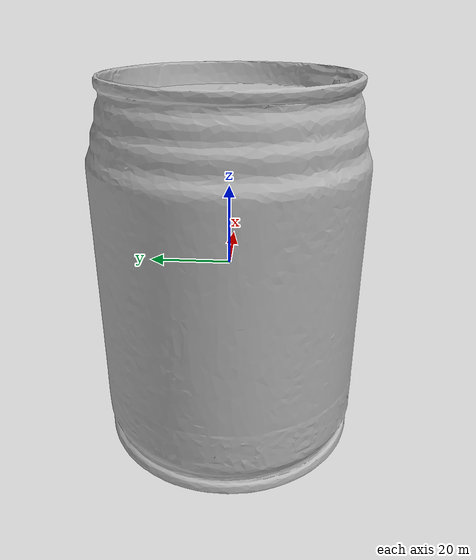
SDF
<sdf version="1.4">
 <world name="default">
  <light name="light1" type="point">
   <pose>0 0 1 0 0 0</pose>
   <diffuse>3 3 3 1</diffuse>
   <specular>3 3 3 1</specular>
  </light>
  <light name="light2" type="point">
   <pose>0 0.5 2 0 0 0</pose>
   <diffuse>1 1 1 1</diffuse>
   <specular>1 1 1 1</specular>
  </light>
  <light name="light3" type="point">
   <pose>0 0.5 2 0 0 0</pose>
   <diffuse>3 3 3 1</diffuse>
   <specular>3 3 3 1</specular>
  </light>
  <scene><ambient>0.7 0.7 0.7</ambient></scene>
  <model name="box2">
   <link name="link_box2">
    <collision name="default">
     <geometry>
      <mesh><uri>model://wooden_puzzle2/collision_meshes/collision.obj</uri><scale>1.0 1.0 1.0</scale></mesh>
     </geometry>
     <surface>
      <friction><ode><mu>0.5</mu><mu2>0.5</mu2></ode></friction>
      <contact><ode><max_vel>0</max_vel><min_depth>0.0001</min_depth><kp>1e8</kp></ode></contact>
     </surface>
    </collision>
    <visual name="default">
     <geometry>
      <mesh><uri>model://wooden_puzzle2/visual_meshes/visual.dae</uri><scale>1.0 1.0 1.0</scale></mesh>
     </geometry>
    </visual>
    <inertial>
     <mass>0.03464552015066147</mass>
     <pose>2.7402536943554878e-05 4.997663199901581e-05 6.587122334167361e-05 -0.1920274284601778 0.6112817660648215 -0.6338676817937987</pose>
     <inertia>
      <ixx>6.440233e-06</ixx>
      <iyy>6.6177017e-06</iyy>
      <izz>6.52356e-06</izz>
      <ixy>0</ixy>
      <ixz>0</ixz>
      <iyz>0</iyz>
     </inertia>
    </inertial>
   </link>
   <pose>0.28315144777297974 0.2809908092021942 0.016917739063501358 0.020848604210674474 0.0007209599781232796 1.6195504994594123</pose>
  </model>
  <model name="box3">
   <link name="link_box3">
    <collision name="default">
     <geometry>
      <mesh><uri>model://wooden_puzzle1/collision_meshes/collision.obj</uri><scale>1.0 1.0 1.0</scale></mesh>
     </geometry>
     <surface>
      <friction><ode><mu>0.5</mu><mu2>0.5</mu2></ode></friction>
      <contact><ode><max_vel>0</max_vel><min_depth>0.0001</min_depth><kp>1e8</kp></ode></contact>
     </surface>
    </collision>
    <visual name="default">
     <geometry>
      <mesh><uri>model://wooden_puzzle1/visual_meshes/visual.dae</uri><scale>1.0 1.0 1.0</scale></mesh>
     </geometry>
    </visual>
    <inertial>
     <mass>0.03424873203039169</mass>
     <pose>-0.0001735068071866408 7.97226166469045e-05 -9.191554272547364e-05 -0.07784599296854997 -0.2636133645981781 -0.5528677830585703</pose>
     <inertia>
      <ixx>6.4618e-06</ixx>
      <iyy>6.3374077e-06</iyy>
      <izz>6.413012e-06</izz>
      <ixy>0</ixy>
      <ixz>0</ixz>
      <iyz>0</iyz>
     </inertia>
    </inertial>
   </link>
   <pose>-0.03480067849159241 0.3132942020893097 0.016802022233605385 0.010512150249861197 -0.009454650886364165 -1.9340766248435377</pose>
  </model>
  <model name="can1">
   <link name="link_can1">
    <collision name="default">
     <geometry>
      <mesh><uri>model://pepsi/collision_meshes/collision.obj</uri><scale>1.0 1.0 1.0</scale></mesh>
     </geometry>
     <surface>
      <friction><ode><mu>0.5</mu><mu2>0.5</mu2></ode></friction>
      <contact><ode><max_vel>0</max_vel><min_depth>0.0001</min_depth><kp>1e8</kp></ode></contact>
     </surface>
    </collision>
    <visual name="default">
     <geometry><mesh><uri>model://pepsi/visual_meshes/visual.dae</uri><scale>1.0 1.0 1.0</scale></mesh></geometry>
    </visual>
    <inertial>
     <mass>0.3250696361064911</mass>
     <pose>-7.5590331107378e-05 2.99312814604491e-05 -0.0003384356386959553 -0.0010678660158137958 -0.0021735266966629516 0.5674177426725915</pose>
     <inertia>
      <ixx>0.0006476009</ixx>
      <iyy>0.0006471292</iyy>
      <izz>0.00013783273</izz>
      <ixy>0</ixy>
      <ixz>0</ixz>
      <iyz>0</iyz>
     </inertia>
    </inertial>
   </link>
   <pose>0.14579138159751892 -0.36663031578063965 0.07449634373188019 -1.825205342477159e-05 2.162390136094487e-06 0.6084849036634543</pose>
  </model>
  <model name="can2">
   <link name="link_can2">
    <collision name="default">
     <geometry>
      <mesh><uri>model://redbull/collision_meshes/collision.obj</uri><scale>1.0 1.0 1.0</scale></mesh>
     </geometry>
     <surface>
      <friction><ode><mu>0.5</mu><mu2>0.5</mu2></ode></friction>
      <contact><ode><max_vel>0</max_vel><min_depth>0.0001</min_depth><kp>1e8</kp></ode></contact>
     </surface>
    </collision>
    <visual name="default">
     <geometry>
      <mesh><uri>model://redbull/visual_meshes/visual.dae</uri><scale>1.0 1.0 1.0</scale></mesh>
     </geometry>
    </visual>
    <inertial>
     <mass>0.28235653042793274</mass>
     <pose>-2.2127058400656097e-05 -0.00012659600179176778 -0.0006860987632535398 0.0011377565977294822 -0.010800863454111471 0.5858141898730843</pose>
     <inertia>
      <ixx>0.0002654759</ixx>
      <iyy>0.0002657</iyy>
      <izz>0.00015754026</izz>
      <ixy>0</ixy>
      <ixz>0</ixz>
      <iyz>0</iyz>
     </inertia>
    </inertial>
   </link>
   <pose>0.2672327160835266 -0.16626670956611633 0.04638562351465225 -0.010489022818769508 0.007261125151603076 -1.549434468742313</pose>
  </model>
  <physics type="ode">
   <max_contacts>50</max_contacts>
   <ode>
    <solver><type>quick</type><iters>75</iters></solver>
    <constraints>
     <contact_max_correcting_vel>0</contact_max_correcting_vel>
     <contact_surface_layer>0</contact_surface_layer>
    </constraints>
   </ode>
  </physics>
 </world>
</sdf>
